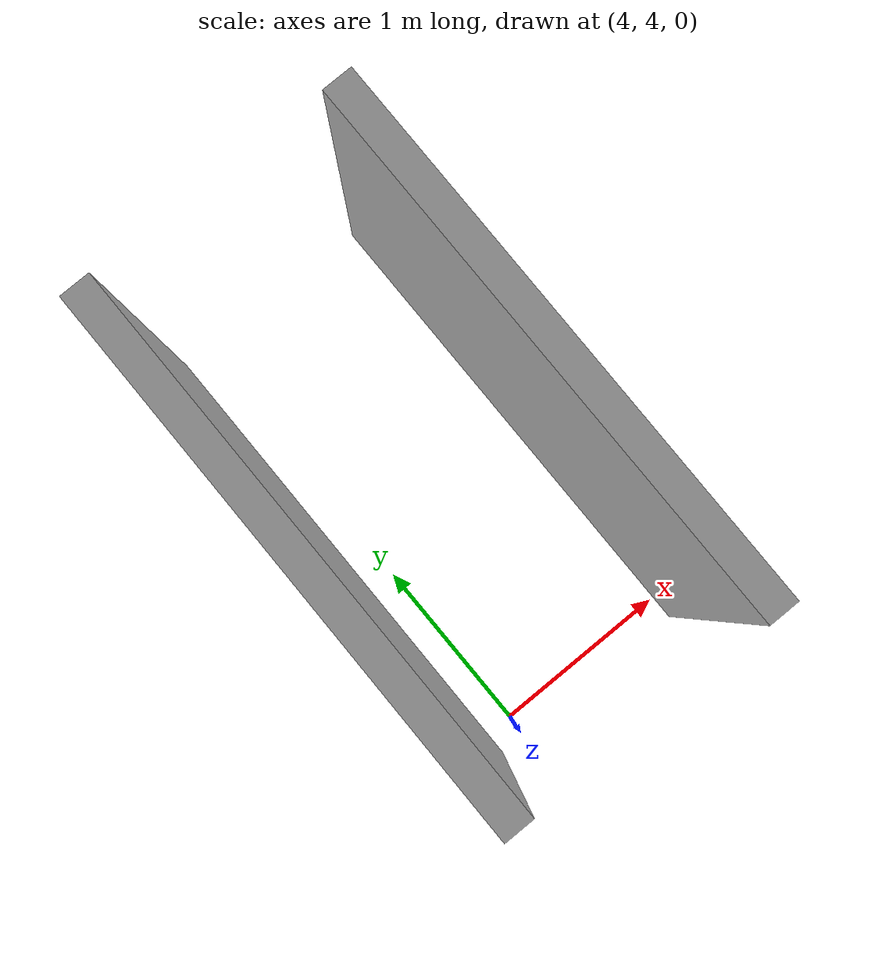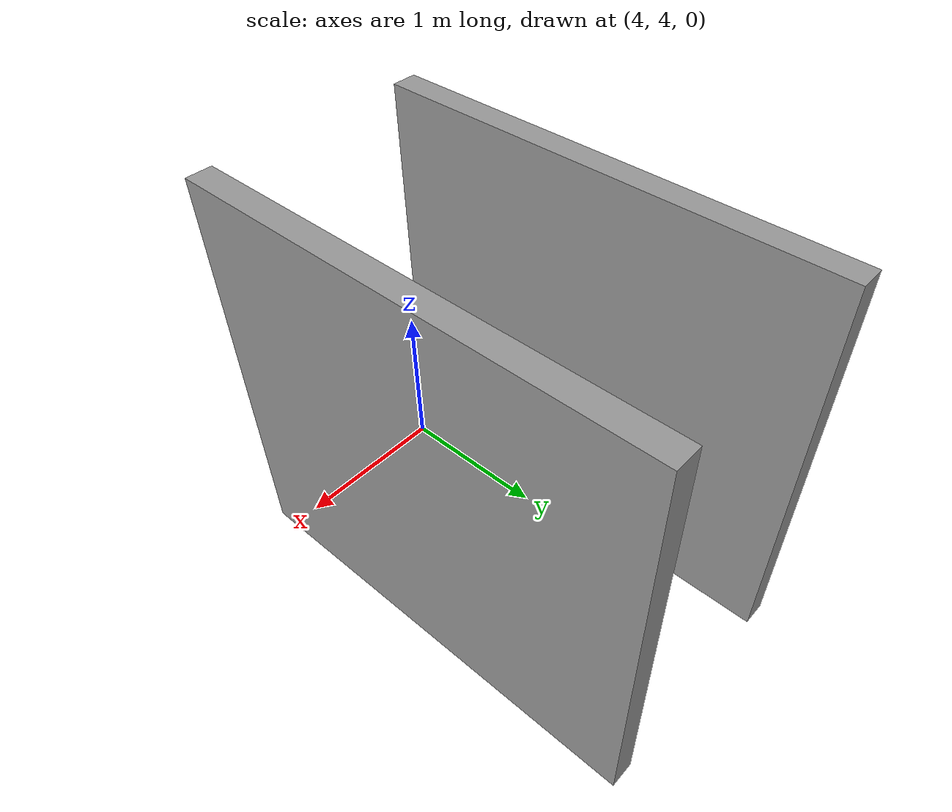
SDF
<?xml version='1.0'?>
<sdf version='1.7'>
  <model name='Untitled'>
    <pose>2.58637 3.31314 0 0 -0 0</pose>
    <link name='Wall_13'>
      <collision name='Wall_13_Collision'>
        <geometry>
          <box>
            <size>2.75 0.15 2.5</size>
          </box>
        </geometry>
        <pose>0 0 1.25 0 -0 0</pose>
      </collision>
      <visual name='Wall_13_Visual'>
        <pose>0 0 1.25 0 -0 0</pose>
        <geometry>
          <box>
            <size>2.75 0.15 2.5</size>
          </box>
        </geometry>
        <material>
          <script>
            <uri>file://media/materials/scripts/gazebo.material</uri>
            <name>Gazebo/Grey</name>
          </script>
          <ambient>1 1 1 1</ambient>
        </material>
        <meta>
          <layer>0</layer>
        </meta>
      </visual>
      <pose>2.51137 1.92513 0 0 -0 -1.5708</pose>
    </link>
    <link name='Wall_18'>
      <collision name='Wall_18_Collision'>
        <geometry>
          <box>
            <size>2.75 0.15 2.5</size>
          </box>
        </geometry>
        <pose>0 0 1.25 0 -0 0</pose>
      </collision>
      <visual name='Wall_18_Visual'>
        <pose>0 0 1.25 0 -0 0</pose>
        <geometry>
          <box>
            <size>2.75 0.15 2.5</size>
          </box>
        </geometry>
        <material>
          <script>
            <uri>file://media/materials/scripts/gazebo.material</uri>
            <name>Gazebo/Grey</name>
          </script>
          <ambient>1 1 1 1</ambient>
        </material>
        <meta>
          <layer>0</layer>
        </meta>
      </visual>
      <pose>1.18575 1.93814 0 0 -0 -1.5708</pose>
    </link>
    <static>1</static>
  </model>
</sdf>
